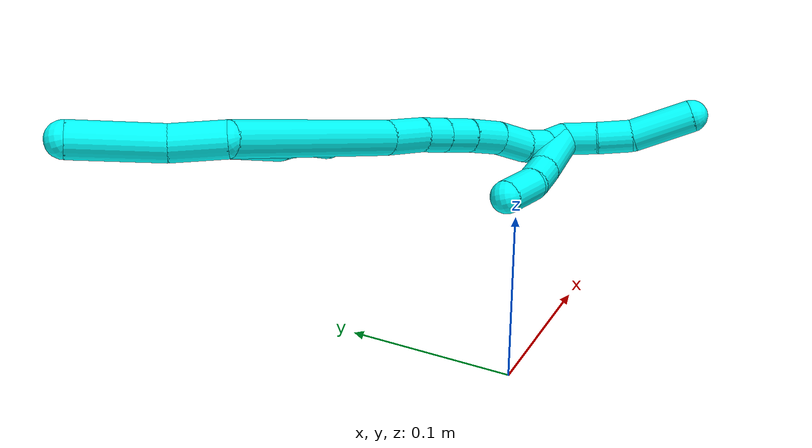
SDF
<sdf version="1.7">
 <world name="default">
  <model name="3">
   <static>0</static>
   <link name="3">
    <collision name="collision-cylinder-e_1_2_8">
     <pose>0.029231 -0.030347 0.010593 1.23494 0.737987 0.535987</pose>
     <geometry><cylinder><radius>0.0125</radius><length>0.086893</length></cylinder></geometry>
     <surface>
      <friction><ode><mu>1.16</mu><mu2>1.16</mu2><slip1>0</slip1><slip2>0</slip2></ode></friction>
      <contact><ode><kp>1e+06</kp><kd>1</kd><max_vel>0</max_vel><min_depth>0.001</min_depth></ode></contact>
     </surface>
    </collision>
    <visual name="visual-cylinder-e_1_2_8">
     <pose>0.029231 -0.030347 0.010593 1.23494 0.737987 0.535987</pose>
     <geometry><cylinder><radius>0.0125</radius><length>0.086893</length></cylinder></geometry>
     <material><ambient>0.003922 1 0.996078 1</ambient></material>
    </visual>
    <collision name="collision-cylinder-e_2_8_9">
     <pose>0.064935 -0.069282 0.023737 1.28213 0.625754 0.473735</pose>
     <geometry><cylinder><radius>0.0125</radius><length>0.022105</length></cylinder></geometry>
     <surface>
      <friction><ode><mu>1.16</mu><mu2>1.16</mu2><slip1>0</slip1><slip2>0</slip2></ode></friction>
      <contact><ode><kp>1e+06</kp><kd>1</kd><max_vel>0</max_vel><min_depth>0.001</min_depth></ode></contact>
     </surface>
    </collision>
    <visual name="visual-cylinder-e_2_8_9">
     <pose>0.064935 -0.069282 0.023737 1.28213 0.625754 0.473735</pose>
     <geometry><cylinder><radius>0.0125</radius><length>0.022105</length></cylinder></geometry>
     <material><ambient>0.003922 1 0.996078 1</ambient></material>
    </visual>
    <collision name="collision-cylinder-e_3_9_10">
     <pose>0.078106 -0.085354 0.025373 1.69232 0.726192 0.810788</pose>
     <geometry><cylinder><radius>0.0125</radius><length>0.02017</length></cylinder></geometry>
     <surface>
      <friction><ode><mu>1.16</mu><mu2>1.16</mu2><slip1>0</slip1><slip2>0</slip2></ode></friction>
      <contact><ode><kp>1e+06</kp><kd>1</kd><max_vel>0</max_vel><min_depth>0.001</min_depth></ode></contact>
     </surface>
    </collision>
    <visual name="visual-cylinder-e_3_9_10">
     <pose>0.078106 -0.085354 0.025373 1.69232 0.726192 0.810788</pose>
     <geometry><cylinder><radius>0.0125</radius><length>0.02017</length></cylinder></geometry>
     <material><ambient>0.003922 1 0.996078 1</ambient></material>
    </visual>
    <collision name="collision-cylinder-e_4_10_6">
     <pose>0.092923 -0.099084 0.022572 1.8642 0.894021 1.14656</pose>
     <geometry><cylinder><radius>0.0125</radius><length>0.020832</length></cylinder></geometry>
     <surface>
      <friction><ode><mu>1.16</mu><mu2>1.16</mu2><slip1>0</slip1><slip2>0</slip2></ode></friction>
      <contact><ode><kp>1e+06</kp><kd>1</kd><max_vel>0</max_vel><min_depth>0.001</min_depth></ode></contact>
     </surface>
    </collision>
    <visual name="visual-cylinder-e_4_10_6">
     <pose>0.092923 -0.099084 0.022572 1.8642 0.894021 1.14656</pose>
     <geometry><cylinder><radius>0.0125</radius><length>0.020832</length></cylinder></geometry>
     <material><ambient>0.003922 1 0.996078 1</ambient></material>
    </visual>
    <collision name="collision-cylinder-e_1_2_11">
     <pose>-0.008334 0.006315 0.015739 -0.381565 -0.456791 0.089727</pose>
     <geometry><cylinder><radius>0.0125</radius><length>0.037791</length></cylinder></geometry>
     <surface>
      <friction><ode><mu>1.16</mu><mu2>1.16</mu2><slip1>0</slip1><slip2>0</slip2></ode></friction>
      <contact><ode><kp>1e+06</kp><kd>1</kd><max_vel>0</max_vel><min_depth>0.001</min_depth></ode></contact>
     </surface>
    </collision>
    <visual name="visual-cylinder-e_1_2_11">
     <pose>-0.008334 0.006315 0.015739 -0.381565 -0.456791 0.089727</pose>
     <geometry><cylinder><radius>0.0125</radius><length>0.037791</length></cylinder></geometry>
     <material><ambient>0.003922 1 0.996078 1</ambient></material>
    </visual>
    <collision name="collision-cylinder-e_2_11_5">
     <pose>-0.034911 0.023817 0.054051 -0.460116 -0.626709 0.151488</pose>
     <geometry><cylinder><radius>0.0125</radius><length>0.062209</length></cylinder></geometry>
     <surface>
      <friction><ode><mu>1.16</mu><mu2>1.16</mu2><slip1>0</slip1><slip2>0</slip2></ode></friction>
      <contact><ode><kp>1e+06</kp><kd>1</kd><max_vel>0</max_vel><min_depth>0.001</min_depth></ode></contact>
     </surface>
    </collision>
    <visual name="visual-cylinder-e_2_11_5">
     <pose>-0.034911 0.023817 0.054051 -0.460116 -0.626709 0.151488</pose>
     <geometry><cylinder><radius>0.0125</radius><length>0.062209</length></cylinder></geometry>
     <material><ambient>0.003922 1 0.996078 1</ambient></material>
    </visual>
    <collision name="collision-cylinder-e_1_2_12">
     <pose>0.045215 -0.04153 -0.021398 2.04657 0.769042 1.17193</pose>
     <geometry><cylinder><radius>0.0125</radius><length>0.130031</length></cylinder></geometry>
     <surface>
      <friction><ode><mu>1.16</mu><mu2>1.16</mu2><slip1>0</slip1><slip2>0</slip2></ode></friction>
      <contact><ode><kp>1e+06</kp><kd>1</kd><max_vel>0</max_vel><min_depth>0.001</min_depth></ode></contact>
     </surface>
    </collision>
    <visual name="visual-cylinder-e_1_2_12">
     <pose>0.045215 -0.04153 -0.021398 2.04657 0.769042 1.17193</pose>
     <geometry><cylinder><radius>0.0125</radius><length>0.130031</length></cylinder></geometry>
     <material><ambient>0.003922 1 0.996078 1</ambient></material>
    </visual>
    <collision name="collision-cylinder-e_2_12_13">
     <pose>0.100613 -0.093471 -0.048907 2.10152 0.700764 1.13612</pose>
     <geometry><cylinder><radius>0.0125</radius><length>0.031587</length></cylinder></geometry>
     <surface>
      <friction><ode><mu>1.16</mu><mu2>1.16</mu2><slip1>0</slip1><slip2>0</slip2></ode></friction>
      <contact><ode><kp>1e+06</kp><kd>1</kd><max_vel>0</max_vel><min_depth>0.001</min_depth></ode></contact>
     </surface>
    </collision>
    <visual name="visual-cylinder-e_2_12_13">
     <pose>0.100613 -0.093471 -0.048907 2.10152 0.700764 1.13612</pose>
     <geometry><cylinder><radius>0.0125</radius><length>0.031587</length></cylinder></geometry>
     <material><ambient>0.003922 1 0.996078 1</ambient></material>
    </visual>
    <collision name="collision-cylinder-e_3_13_14">
     <pose>0.11787 -0.109829 -0.059286 2.19343 0.768251 1.33445</pose>
     <geometry><cylinder><radius>0.0125</radius><length>0.02036</length></cylinder></geometry>
     <surface>
      <friction><ode><mu>1.16</mu><mu2>1.16</mu2><slip1>0</slip1><slip2>0</slip2></ode></friction>
      <contact><ode><kp>1e+06</kp><kd>1</kd><max_vel>0</max_vel><min_depth>0.001</min_depth></ode></contact>
     </surface>
    </collision>
    <visual name="visual-cylinder-e_3_13_14">
     <pose>0.11787 -0.109829 -0.059286 2.19343 0.768251 1.33445</pose>
     <geometry><cylinder><radius>0.0125</radius><length>0.02036</length></cylinder></geometry>
     <material><ambient>0.003922 1 0.996078 1</ambient></material>
    </visual>
    <collision name="collision-cylinder-e_4_14_15">
     <pose>0.1331 -0.122659 -0.068608 2.20401 0.762435 1.33901</pose>
     <geometry><cylinder><radius>0.0125</radius><length>0.023617</length></cylinder></geometry>
     <surface>
      <friction><ode><mu>1.16</mu><mu2>1.16</mu2><slip1>0</slip1><slip2>0</slip2></ode></friction>
      <contact><ode><kp>1e+06</kp><kd>1</kd><max_vel>0</max_vel><min_depth>0.001</min_depth></ode></contact>
     </surface>
    </collision>
    <visual name="visual-cylinder-e_4_14_15">
     <pose>0.1331 -0.122659 -0.068608 2.20401 0.762435 1.33901</pose>
     <geometry><cylinder><radius>0.0125</radius><length>0.023617</length></cylinder></geometry>
     <material><ambient>0.003922 1 0.996078 1</ambient></material>
    </visual>
    <collision name="collision-cylinder-e_5_15_16">
     <pose>0.151327 -0.13717 -0.079326 2.2096 0.814586 1.418</pose>
     <geometry><cylinder><radius>0.0125</radius><length>0.027689</length></cylinder></geometry>
     <surface>
      <friction><ode><mu>1.16</mu><mu2>1.16</mu2><slip1>0</slip1><slip2>0</slip2></ode></friction>
      <contact><ode><kp>1e+06</kp><kd>1</kd><max_vel>0</max_vel><min_depth>0.001</min_depth></ode></contact>
     </surface>
    </collision>
    <visual name="visual-cylinder-e_5_15_16">
     <pose>0.151327 -0.13717 -0.079326 2.2096 0.814586 1.418</pose>
     <geometry><cylinder><radius>0.0125</radius><length>0.027689</length></cylinder></geometry>
     <material><ambient>0.003922 1 0.996078 1</ambient></material>
    </visual>
    <collision name="collision-cylinder-e_6_16_17">
     <pose>0.171981 -0.149669 -0.090688 2.43418 0.95438 1.90131</pose>
     <geometry><cylinder><radius>0.0125</radius><length>0.02594</length></cylinder></geometry>
     <surface>
      <friction><ode><mu>1.16</mu><mu2>1.16</mu2><slip1>0</slip1><slip2>0</slip2></ode></friction>
      <contact><ode><kp>1e+06</kp><kd>1</kd><max_vel>0</max_vel><min_depth>0.001</min_depth></ode></contact>
     </surface>
    </collision>
    <visual name="visual-cylinder-e_6_16_17">
     <pose>0.171981 -0.149669 -0.090688 2.43418 0.95438 1.90131</pose>
     <geometry><cylinder><radius>0.0125</radius><length>0.02594</length></cylinder></geometry>
     <material><ambient>0.003922 1 0.996078 1</ambient></material>
    </visual>
    <collision name="collision-cylinder-e_7_17_18">
     <pose>0.18938 -0.160027 -0.101534 2.32439 0.73626 1.45548</pose>
     <geometry><cylinder><radius>0.0125</radius><length>0.020301</length></cylinder></geometry>
     <surface>
      <friction><ode><mu>1.16</mu><mu2>1.16</mu2><slip1>0</slip1><slip2>0</slip2></ode></friction>
      <contact><ode><kp>1e+06</kp><kd>1</kd><max_vel>0</max_vel><min_depth>0.001</min_depth></ode></contact>
     </surface>
    </collision>
    <visual name="visual-cylinder-e_7_17_18">
     <pose>0.18938 -0.160027 -0.101534 2.32439 0.73626 1.45548</pose>
     <geometry><cylinder><radius>0.0125</radius><length>0.020301</length></cylinder></geometry>
     <material><ambient>0.003922 1 0.996078 1</ambient></material>
    </visual>
    <collision name="collision-cylinder-e_8_18_1">
     <pose>0.201087 -0.173469 -0.110873 2.05573 0.498022 0.797651</pose>
     <geometry><cylinder><radius>0.0125</radius><length>0.020476</length></cylinder></geometry>
     <surface>
      <friction><ode><mu>1.16</mu><mu2>1.16</mu2><slip1>0</slip1><slip2>0</slip2></ode></friction>
      <contact><ode><kp>1e+06</kp><kd>1</kd><max_vel>0</max_vel><min_depth>0.001</min_depth></ode></contact>
     </surface>
    </collision>
    <visual name="visual-cylinder-e_8_18_1">
     <pose>0.201087 -0.173469 -0.110873 2.05573 0.498022 0.797651</pose>
     <geometry><cylinder><radius>0.0125</radius><length>0.020476</length></cylinder></geometry>
     <material><ambient>0.003922 1 0.996078 1</ambient></material>
    </visual>
    <collision name="collision-cylinder-e_1_1_19">
     <pose>0.209964 -0.182855 -0.127333 3.02563 0.312211 2.43491</pose>
     <geometry><cylinder><radius>0.0125</radius><length>0.025954</length></cylinder></geometry>
     <surface>
      <friction><ode><mu>1.16</mu><mu2>1.16</mu2><slip1>0</slip1><slip2>0</slip2></ode></friction>
      <contact><ode><kp>1e+06</kp><kd>1</kd><max_vel>0</max_vel><min_depth>0.001</min_depth></ode></contact>
     </surface>
    </collision>
    <visual name="visual-cylinder-e_1_1_19">
     <pose>0.209964 -0.182855 -0.127333 3.02563 0.312211 2.43491</pose>
     <geometry><cylinder><radius>0.0125</radius><length>0.025954</length></cylinder></geometry>
     <material><ambient>0.003922 1 0.996078 1</ambient></material>
    </visual>
    <collision name="collision-cylinder-e_2_19_20">
     <pose>0.218381 -0.18694 -0.151828 2.92774 0.340363 2.02497</pose>
     <geometry><cylinder><radius>0.0125</radius><length>0.02655</length></cylinder></geometry>
     <surface>
      <friction><ode><mu>1.16</mu><mu2>1.16</mu2><slip1>0</slip1><slip2>0</slip2></ode></friction>
      <contact><ode><kp>1e+06</kp><kd>1</kd><max_vel>0</max_vel><min_depth>0.001</min_depth></ode></contact>
     </surface>
    </collision>
    <visual name="visual-cylinder-e_2_19_20">
     <pose>0.218381 -0.18694 -0.151828 2.92774 0.340363 2.02497</pose>
     <geometry><cylinder><radius>0.0125</radius><length>0.02655</length></cylinder></geometry>
     <material><ambient>0.003922 1 0.996078 1</ambient></material>
    </visual>
    <collision name="collision-cylinder-e_3_20_4">
     <pose>0.225777 -0.198108 -0.186027 2.77196 0.125153 0.646787</pose>
     <geometry><cylinder><radius>0.0125</radius><length>0.047496</length></cylinder></geometry>
     <surface>
      <friction><ode><mu>1.16</mu><mu2>1.16</mu2><slip1>0</slip1><slip2>0</slip2></ode></friction>
      <contact><ode><kp>1e+06</kp><kd>1</kd><max_vel>0</max_vel><min_depth>0.001</min_depth></ode></contact>
     </surface>
    </collision>
    <visual name="visual-cylinder-e_3_20_4">
     <pose>0.225777 -0.198108 -0.186027 2.77196 0.125153 0.646787</pose>
     <geometry><cylinder><radius>0.0125</radius><length>0.047496</length></cylinder></geometry>
     <material><ambient>0.003922 1 0.996078 1</ambient></material>
    </visual>
    <collision name="collision-cylinder-e_1_1_21">
     <pose>0.199698 -0.158459 -0.112869 -1.47541 -0.265717 0.241754</pose>
     <geometry><cylinder><radius>0.0125</radius><length>0.047824</length></cylinder></geometry>
     <surface>
      <friction><ode><mu>1.16</mu><mu2>1.16</mu2><slip1>0</slip1><slip2>0</slip2></ode></friction>
      <contact><ode><kp>1e+06</kp><kd>1</kd><max_vel>0</max_vel><min_depth>0.001</min_depth></ode></contact>
     </surface>
    </collision>
    <visual name="visual-cylinder-e_1_1_21">
     <pose>0.199698 -0.158459 -0.112869 -1.47541 -0.265717 0.241754</pose>
     <geometry><cylinder><radius>0.0125</radius><length>0.047824</length></cylinder></geometry>
     <material><ambient>0.003922 1 0.996078 1</ambient></material>
    </visual>
    <collision name="collision-cylinder-e_2_21_22">
     <pose>0.189515 -0.124863 -0.109828 -1.49161 -0.351025 0.324762</pose>
     <geometry><cylinder><radius>0.0125</radius><length>0.022707</length></cylinder></geometry>
     <surface>
      <friction><ode><mu>1.16</mu><mu2>1.16</mu2><slip1>0</slip1><slip2>0</slip2></ode></friction>
      <contact><ode><kp>1e+06</kp><kd>1</kd><max_vel>0</max_vel><min_depth>0.001</min_depth></ode></contact>
     </surface>
    </collision>
    <visual name="visual-cylinder-e_2_21_22">
     <pose>0.189515 -0.124863 -0.109828 -1.49161 -0.351025 0.324762</pose>
     <geometry><cylinder><radius>0.0125</radius><length>0.022707</length></cylinder></geometry>
     <material><ambient>0.003922 1 0.996078 1</ambient></material>
    </visual>
    <collision name="collision-cylinder-e_3_22_3">
     <pose>0.178783 -0.102137 -0.104074 -1.18523 -0.481798 0.327874</pose>
     <geometry><cylinder><radius>0.0125</radius><length>0.029469</length></cylinder></geometry>
     <surface>
      <friction><ode><mu>1.16</mu><mu2>1.16</mu2><slip1>0</slip1><slip2>0</slip2></ode></friction>
      <contact><ode><kp>1e+06</kp><kd>1</kd><max_vel>0</max_vel><min_depth>0.001</min_depth></ode></contact>
     </surface>
    </collision>
    <visual name="visual-cylinder-e_3_22_3">
     <pose>0.178783 -0.102137 -0.104074 -1.18523 -0.481798 0.327874</pose>
     <geometry><cylinder><radius>0.0125</radius><length>0.029469</length></cylinder></geometry>
     <material><ambient>0.003922 1 0.996078 1</ambient></material>
    </visual>
    <collision name="collision-sphere-3">
     <pose>0.171956 -0.090038 -0.099163 0 -0 0</pose>
     <geometry><sphere><radius>0.0125</radius></sphere></geometry>
     <surface>
      <friction><ode><mu>1.16</mu><mu2>1.16</mu2><slip1>0</slip1><slip2>0</slip2></ode></friction>
      <contact><ode><kp>1e+06</kp><kd>1</kd><max_vel>0</max_vel><min_depth>0.001</min_depth></ode></contact>
     </surface>
    </collision>
    <visual name="visual-sphere-3">
     <pose>0.171956 -0.090038 -0.099163 0 -0 0</pose>
     <geometry><sphere><radius>0.0125</radius></sphere></geometry>
     <material><ambient>0.003922 1 0.996078 1</ambient></material>
    </visual>
    <collision name="collision-sphere-22">
     <pose>0.185611 -0.114235 -0.108985 0 -0 0</pose>
     <geometry><sphere><radius>0.0125</radius></sphere></geometry>
     <surface>
      <friction><ode><mu>1.16</mu><mu2>1.16</mu2><slip1>0</slip1><slip2>0</slip2></ode></friction>
      <contact><ode><kp>1e+06</kp><kd>1</kd><max_vel>0</max_vel><min_depth>0.001</min_depth></ode></contact>
     </surface>
    </collision>
    <visual name="visual-sphere-22">
     <pose>0.185611 -0.114235 -0.108985 0 -0 0</pose>
     <geometry><sphere><radius>0.0125</radius></sphere></geometry>
     <material><ambient>0.003922 1 0.996078 1</ambient></material>
    </visual>
    <collision name="collision-sphere-21">
     <pose>0.193419 -0.135491 -0.110671 0 -0 0</pose>
     <geometry><sphere><radius>0.0125</radius></sphere></geometry>
     <surface>
      <friction><ode><mu>1.16</mu><mu2>1.16</mu2><slip1>0</slip1><slip2>0</slip2></ode></friction>
      <contact><ode><kp>1e+06</kp><kd>1</kd><max_vel>0</max_vel><min_depth>0.001</min_depth></ode></contact>
     </surface>
    </collision>
    <visual name="visual-sphere-21">
     <pose>0.193419 -0.135491 -0.110671 0 -0 0</pose>
     <geometry><sphere><radius>0.0125</radius></sphere></geometry>
     <material><ambient>0.003922 1 0.996078 1</ambient></material>
    </visual>
    <collision name="collision-sphere-4">
     <pose>0.228742 -0.20662 -0.207998 0 -0 0</pose>
     <geometry><sphere><radius>0.0125</radius></sphere></geometry>
     <surface>
      <friction><ode><mu>1.16</mu><mu2>1.16</mu2><slip1>0</slip1><slip2>0</slip2></ode></friction>
      <contact><ode><kp>1e+06</kp><kd>1</kd><max_vel>0</max_vel><min_depth>0.001</min_depth></ode></contact>
     </surface>
    </collision>
    <visual name="visual-sphere-4">
     <pose>0.228742 -0.20662 -0.207998 0 -0 0</pose>
     <geometry><sphere><radius>0.0125</radius></sphere></geometry>
     <material><ambient>0.003922 1 0.996078 1</ambient></material>
    </visual>
    <collision name="collision-sphere-20">
     <pose>0.222813 -0.189595 -0.164056 0 -0 0</pose>
     <geometry><sphere><radius>0.0125</radius></sphere></geometry>
     <surface>
      <friction><ode><mu>1.16</mu><mu2>1.16</mu2><slip1>0</slip1><slip2>0</slip2></ode></friction>
      <contact><ode><kp>1e+06</kp><kd>1</kd><max_vel>0</max_vel><min_depth>0.001</min_depth></ode></contact>
     </surface>
    </collision>
    <visual name="visual-sphere-20">
     <pose>0.222813 -0.189595 -0.164056 0 -0 0</pose>
     <geometry><sphere><radius>0.0125</radius></sphere></geometry>
     <material><ambient>0.003922 1 0.996078 1</ambient></material>
    </visual>
    <collision name="collision-sphere-11">
     <pose>-0.016669 0.01263 0.031477 0 -0 0</pose>
     <geometry><sphere><radius>0.0125</radius></sphere></geometry>
     <surface>
      <friction><ode><mu>1.16</mu><mu2>1.16</mu2><slip1>0</slip1><slip2>0</slip2></ode></friction>
      <contact><ode><kp>1e+06</kp><kd>1</kd><max_vel>0</max_vel><min_depth>0.001</min_depth></ode></contact>
     </surface>
    </collision>
    <visual name="visual-sphere-11">
     <pose>-0.016669 0.01263 0.031477 0 -0 0</pose>
     <geometry><sphere><radius>0.0125</radius></sphere></geometry>
     <material><ambient>0.003922 1 0.996078 1</ambient></material>
    </visual>
    <collision name="collision-sphere-6">
     <pose>0.101043 -0.105328 0.020686 0 -0 0</pose>
     <geometry><sphere><radius>0.0125</radius></sphere></geometry>
     <surface>
      <friction><ode><mu>1.16</mu><mu2>1.16</mu2><slip1>0</slip1><slip2>0</slip2></ode></friction>
      <contact><ode><kp>1e+06</kp><kd>1</kd><max_vel>0</max_vel><min_depth>0.001</min_depth></ode></contact>
     </surface>
    </collision>
    <visual name="visual-sphere-6">
     <pose>0.101043 -0.105328 0.020686 0 -0 0</pose>
     <geometry><sphere><radius>0.0125</radius></sphere></geometry>
     <material><ambient>0.003922 1 0.996078 1</ambient></material>
    </visual>
    <collision name="collision-sphere-10">
     <pose>0.084802 -0.09284 0.024459 0 -0 0</pose>
     <geometry><sphere><radius>0.0125</radius></sphere></geometry>
     <surface>
      <friction><ode><mu>1.16</mu><mu2>1.16</mu2><slip1>0</slip1><slip2>0</slip2></ode></friction>
      <contact><ode><kp>1e+06</kp><kd>1</kd><max_vel>0</max_vel><min_depth>0.001</min_depth></ode></contact>
     </surface>
    </collision>
    <visual name="visual-sphere-10">
     <pose>0.084802 -0.09284 0.024459 0 -0 0</pose>
     <geometry><sphere><radius>0.0125</radius></sphere></geometry>
     <material><ambient>0.003922 1 0.996078 1</ambient></material>
    </visual>
    <collision name="collision-sphere-9">
     <pose>0.071409 -0.077869 0.026287 0 -0 0</pose>
     <geometry><sphere><radius>0.0125</radius></sphere></geometry>
     <surface>
      <friction><ode><mu>1.16</mu><mu2>1.16</mu2><slip1>0</slip1><slip2>0</slip2></ode></friction>
      <contact><ode><kp>1e+06</kp><kd>1</kd><max_vel>0</max_vel><min_depth>0.001</min_depth></ode></contact>
     </surface>
    </collision>
    <visual name="visual-sphere-9">
     <pose>0.071409 -0.077869 0.026287 0 -0 0</pose>
     <geometry><sphere><radius>0.0125</radius></sphere></geometry>
     <material><ambient>0.003922 1 0.996078 1</ambient></material>
    </visual>
    <collision name="collision-sphere-2">
     <geometry><sphere><radius>0.0125</radius></sphere></geometry>
     <surface>
      <friction><ode><mu>1.16</mu><mu2>1.16</mu2><slip1>0</slip1><slip2>0</slip2></ode></friction>
      <contact><ode><kp>1e+06</kp><kd>1</kd><max_vel>0</max_vel><min_depth>0.001</min_depth></ode></contact>
     </surface>
    </collision>
    <visual name="visual-sphere-2">
     <geometry><sphere><radius>0.0125</radius></sphere></geometry>
     <material><ambient>0.003922 1 0.996078 1</ambient></material>
    </visual>
    <collision name="collision-sphere-19">
     <pose>0.21395 -0.184284 -0.139599 0 -0 0</pose>
     <geometry><sphere><radius>0.0125</radius></sphere></geometry>
     <surface>
      <friction><ode><mu>1.16</mu><mu2>1.16</mu2><slip1>0</slip1><slip2>0</slip2></ode></friction>
      <contact><ode><kp>1e+06</kp><kd>1</kd><max_vel>0</max_vel><min_depth>0.001</min_depth></ode></contact>
     </surface>
    </collision>
    <visual name="visual-sphere-19">
     <pose>0.21395 -0.184284 -0.139599 0 -0 0</pose>
     <geometry><sphere><radius>0.0125</radius></sphere></geometry>
     <material><ambient>0.003922 1 0.996078 1</ambient></material>
    </visual>
    <collision name="collision-sphere-8">
     <pose>0.058462 -0.060694 0.021187 0 -0 0</pose>
     <geometry><sphere><radius>0.0125</radius></sphere></geometry>
     <surface>
      <friction><ode><mu>1.16</mu><mu2>1.16</mu2><slip1>0</slip1><slip2>0</slip2></ode></friction>
      <contact><ode><kp>1e+06</kp><kd>1</kd><max_vel>0</max_vel><min_depth>0.001</min_depth></ode></contact>
     </surface>
    </collision>
    <visual name="visual-sphere-8">
     <pose>0.058462 -0.060694 0.021187 0 -0 0</pose>
     <geometry><sphere><radius>0.0125</radius></sphere></geometry>
     <material><ambient>0.003922 1 0.996078 1</ambient></material>
    </visual>
    <collision name="collision-sphere-5">
     <pose>-0.053153 0.035004 0.076624 0 -0 0</pose>
     <geometry><sphere><radius>0.0125</radius></sphere></geometry>
     <surface>
      <friction><ode><mu>1.16</mu><mu2>1.16</mu2><slip1>0</slip1><slip2>0</slip2></ode></friction>
      <contact><ode><kp>1e+06</kp><kd>1</kd><max_vel>0</max_vel><min_depth>0.001</min_depth></ode></contact>
     </surface>
    </collision>
    <visual name="visual-sphere-5">
     <pose>-0.053153 0.035004 0.076624 0 -0 0</pose>
     <geometry><sphere><radius>0.0125</radius></sphere></geometry>
     <material><ambient>0.003922 1 0.996078 1</ambient></material>
    </visual>
    <collision name="collision-sphere-12">
     <pose>0.090429 -0.08306 -0.042797 0 -0 0</pose>
     <geometry><sphere><radius>0.0125</radius></sphere></geometry>
     <surface>
      <friction><ode><mu>1.16</mu><mu2>1.16</mu2><slip1>0</slip1><slip2>0</slip2></ode></friction>
      <contact><ode><kp>1e+06</kp><kd>1</kd><max_vel>0</max_vel><min_depth>0.001</min_depth></ode></contact>
     </surface>
    </collision>
    <visual name="visual-sphere-12">
     <pose>0.090429 -0.08306 -0.042797 0 -0 0</pose>
     <geometry><sphere><radius>0.0125</radius></sphere></geometry>
     <material><ambient>0.003922 1 0.996078 1</ambient></material>
    </visual>
    <collision name="collision-sphere-13">
     <pose>0.110797 -0.103882 -0.055017 0 -0 0</pose>
     <geometry><sphere><radius>0.0125</radius></sphere></geometry>
     <surface>
      <friction><ode><mu>1.16</mu><mu2>1.16</mu2><slip1>0</slip1><slip2>0</slip2></ode></friction>
      <contact><ode><kp>1e+06</kp><kd>1</kd><max_vel>0</max_vel><min_depth>0.001</min_depth></ode></contact>
     </surface>
    </collision>
    <visual name="visual-sphere-13">
     <pose>0.110797 -0.103882 -0.055017 0 -0 0</pose>
     <geometry><sphere><radius>0.0125</radius></sphere></geometry>
     <material><ambient>0.003922 1 0.996078 1</ambient></material>
    </visual>
    <collision name="collision-sphere-14">
     <pose>0.124944 -0.115776 -0.063555 0 -0 0</pose>
     <geometry><sphere><radius>0.0125</radius></sphere></geometry>
     <surface>
      <friction><ode><mu>1.16</mu><mu2>1.16</mu2><slip1>0</slip1><slip2>0</slip2></ode></friction>
      <contact><ode><kp>1e+06</kp><kd>1</kd><max_vel>0</max_vel><min_depth>0.001</min_depth></ode></contact>
     </surface>
    </collision>
    <visual name="visual-sphere-14">
     <pose>0.124944 -0.115776 -0.063555 0 -0 0</pose>
     <geometry><sphere><radius>0.0125</radius></sphere></geometry>
     <material><ambient>0.003922 1 0.996078 1</ambient></material>
    </visual>
    <collision name="collision-sphere-15">
     <pose>0.141256 -0.129543 -0.073661 0 -0 0</pose>
     <geometry><sphere><radius>0.0125</radius></sphere></geometry>
     <surface>
      <friction><ode><mu>1.16</mu><mu2>1.16</mu2><slip1>0</slip1><slip2>0</slip2></ode></friction>
      <contact><ode><kp>1e+06</kp><kd>1</kd><max_vel>0</max_vel><min_depth>0.001</min_depth></ode></contact>
     </surface>
    </collision>
    <visual name="visual-sphere-15">
     <pose>0.141256 -0.129543 -0.073661 0 -0 0</pose>
     <geometry><sphere><radius>0.0125</radius></sphere></geometry>
     <material><ambient>0.003922 1 0.996078 1</ambient></material>
    </visual>
    <collision name="collision-sphere-16">
     <pose>0.161398 -0.144796 -0.08499 0 -0 0</pose>
     <geometry><sphere><radius>0.0125</radius></sphere></geometry>
     <surface>
      <friction><ode><mu>1.16</mu><mu2>1.16</mu2><slip1>0</slip1><slip2>0</slip2></ode></friction>
      <contact><ode><kp>1e+06</kp><kd>1</kd><max_vel>0</max_vel><min_depth>0.001</min_depth></ode></contact>
     </surface>
    </collision>
    <visual name="visual-sphere-16">
     <pose>0.161398 -0.144796 -0.08499 0 -0 0</pose>
     <geometry><sphere><radius>0.0125</radius></sphere></geometry>
     <material><ambient>0.003922 1 0.996078 1</ambient></material>
    </visual>
    <collision name="collision-sphere-17">
     <pose>0.182564 -0.154542 -0.096387 0 -0 0</pose>
     <geometry><sphere><radius>0.0125</radius></sphere></geometry>
     <surface>
      <friction><ode><mu>1.16</mu><mu2>1.16</mu2><slip1>0</slip1><slip2>0</slip2></ode></friction>
      <contact><ode><kp>1e+06</kp><kd>1</kd><max_vel>0</max_vel><min_depth>0.001</min_depth></ode></contact>
     </surface>
    </collision>
    <visual name="visual-sphere-17">
     <pose>0.182564 -0.154542 -0.096387 0 -0 0</pose>
     <geometry><sphere><radius>0.0125</radius></sphere></geometry>
     <material><ambient>0.003922 1 0.996078 1</ambient></material>
    </visual>
    <collision name="collision-sphere-18">
     <pose>0.196197 -0.165512 -0.106681 0 -0 0</pose>
     <geometry><sphere><radius>0.0125</radius></sphere></geometry>
     <surface>
      <friction><ode><mu>1.16</mu><mu2>1.16</mu2><slip1>0</slip1><slip2>0</slip2></ode></friction>
      <contact><ode><kp>1e+06</kp><kd>1</kd><max_vel>0</max_vel><min_depth>0.001</min_depth></ode></contact>
     </surface>
    </collision>
    <visual name="visual-sphere-18">
     <pose>0.196197 -0.165512 -0.106681 0 -0 0</pose>
     <geometry><sphere><radius>0.0125</radius></sphere></geometry>
     <material><ambient>0.003922 1 0.996078 1</ambient></material>
    </visual>
    <collision name="collision-sphere-1">
     <pose>0.205978 -0.181426 -0.115066 0 -0 0</pose>
     <geometry><sphere><radius>0.0125</radius></sphere></geometry>
     <surface>
      <friction><ode><mu>1.16</mu><mu2>1.16</mu2><slip1>0</slip1><slip2>0</slip2></ode></friction>
      <contact><ode><kp>1e+06</kp><kd>1</kd><max_vel>0</max_vel><min_depth>0.001</min_depth></ode></contact>
     </surface>
    </collision>
    <visual name="visual-sphere-1">
     <pose>0.205978 -0.181426 -0.115066 0 -0 0</pose>
     <geometry><sphere><radius>0.0125</radius></sphere></geometry>
     <material><ambient>0.003922 1 0.996078 1</ambient></material>
    </visual>
    <inertial>
     <pose>0.103076 -0.08899 -0.049041 0 -0 0</pose>
     <mass>0.75</mass>
     <inertia>
      <ixx>0.000334</ixx>
      <ixy>0</ixy>
      <ixz>0</ixz>
      <iyy>0.000306</iyy>
      <iyz>0</iyz>
      <izz>-2.1e-05</izz>
     </inertia>
    </inertial>
   </link>
   <pose>0.034798 0.206833 0.092777 -2.32674 1.04391 -0.619518</pose>
  </model>
 </world>
</sdf>
